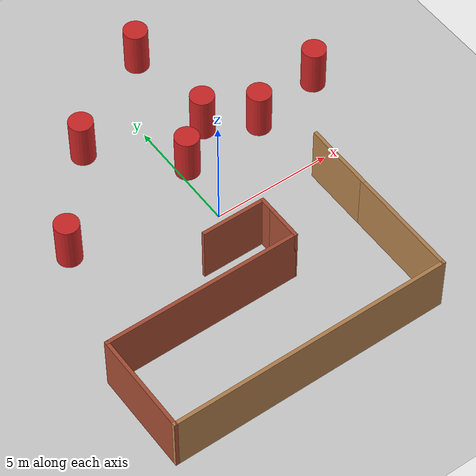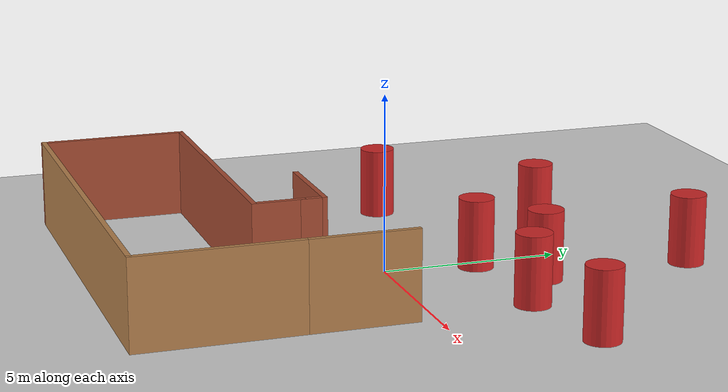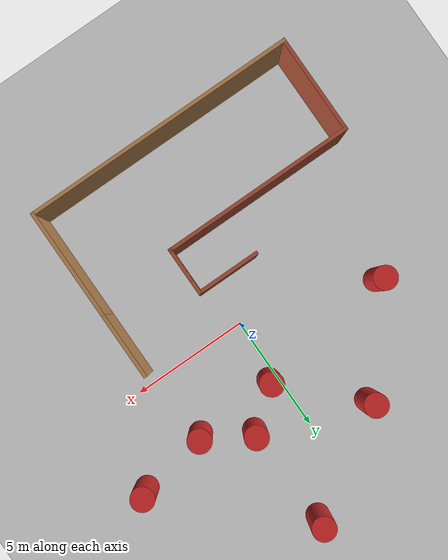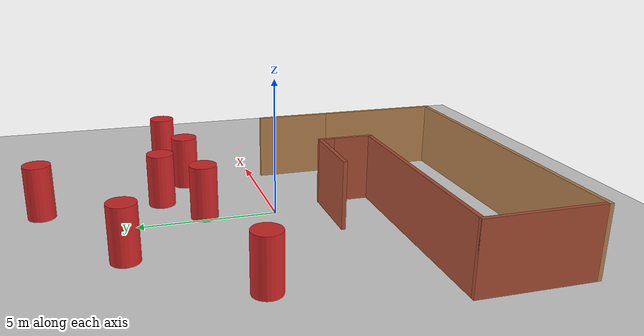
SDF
<sdf version="1.6">
 <world name="default">
  <light name="sun" type="directional">
   <pose>0 0 10 0 -0 0</pose>
   <diffuse>0.8 0.8 0.8 1</diffuse>
   <specular>0.2 0.2 0.2 1</specular>
   <attenuation>
    <range>1000</range>
    <constant>0.9</constant>
    <linear>0.01</linear>
    <quadratic>0.001</quadratic>
   </attenuation>
   <direction>-0.5 0.1 -0.9</direction>
  </light>
  <model name="ground_plane">
   <static>1</static>
   <link name="link">
    <collision name="collision">
     <geometry><plane><normal>0 0 1</normal><size>100 100</size></plane></geometry>
     <surface>
      <contact><collide_bitmask>65535</collide_bitmask></contact>
      <friction><ode><mu>100</mu><mu2>50</mu2></ode></friction>
     </surface>
    </collision>
    <visual name="visual">
     <cast_shadows>0</cast_shadows>
     <geometry><plane><normal>0 0 1</normal><size>100 100</size></plane></geometry>
     <material>
      <script><uri>file://media/materials/scripts/gazebo.material</uri><name>Gazebo/Grey</name></script>
     </material>
    </visual>
   </link>
  </model>
  <gravity>0 0 -9.8</gravity>
  <magnetic_field>6e-06 2.3e-05 -4.2e-05</magnetic_field>
  <atmosphere type="adiabatic"/>
  <physics name="default_physics" default="0" type="ode">
   <max_step_size>0.001</max_step_size>
   <real_time_factor>1</real_time_factor>
   <real_time_update_rate>1000</real_time_update_rate>
  </physics>
  <scene><ambient>0.4 0.4 0.4 1</ambient><background>0.7 0.7 0.7 1</background><shadows>1</shadows></scene>
  <audio><device>default</device></audio>
  <spherical_coordinates>
   <surface_model>EARTH_WGS84</surface_model>
   <latitude_deg>0</latitude_deg>
   <longitude_deg>0</longitude_deg>
   <elevation>0</elevation>
   <heading_deg>0</heading_deg>
  </spherical_coordinates>
  <model name="Untitled">
   <link name="link_0">
    <inertial>
     <mass>1</mass>
     <inertia><ixx>0.145833</ixx><ixy>0</ixy><ixz>0</ixz><iyy>0.145833</iyy><iyz>0</iyz><izz>0.125</izz></inertia>
    </inertial>
    <pose>2.88173 -1.23991 0 0 -0 0</pose>
    <visual name="visual">
     <geometry><cylinder><radius>0.5</radius><length>2</length></cylinder></geometry>
     <material>
      <lighting>1</lighting>
      <script><uri>file://media/materials/scripts/gazebo.material</uri><name>Gazebo/Red</name></script>
      <shader type="vertex"><normal_map>__default__</normal_map></shader>
      <ambient>1 0 0 1</ambient>
      <diffuse>1 0 0 1</diffuse>
      <specular>0.1 0.1 0.1 1</specular>
      <emissive>0 0 0 1</emissive>
     </material>
    </visual>
    <collision name="collision">
     <geometry><cylinder><radius>0.5</radius><length>2</length></cylinder></geometry>
     <surface>
      <friction>
       <ode><mu>1</mu><mu2>1</mu2><fdir1>0 0 0</fdir1><slip1>0</slip1><slip2>0</slip2></ode>
       <torsional>
        <coefficient>1</coefficient>
        <patch_radius>0</patch_radius>
        <surface_radius>0</surface_radius>
        <use_patch_radius>1</use_patch_radius>
        <ode><slip>0</slip></ode>
       </torsional>
      </friction>
      <bounce><restitution_coefficient>0</restitution_coefficient><threshold>1e+06</threshold></bounce>
      <contact>
       <collide_without_contact>0</collide_without_contact>
       <collide_without_contact_bitmask>1</collide_without_contact_bitmask>
       <collide_bitmask>1</collide_bitmask>
       <ode>
        <soft_cfm>0</soft_cfm>
        <soft_erp>0.2</soft_erp>
        <kp>1e+13</kp>
        <kd>1</kd>
        <max_vel>0.01</max_vel>
        <min_depth>0</min_depth>
       </ode>
       <bullet>
        <split_impulse>1</split_impulse>
        <split_impulse_penetration_threshold>-0.01</split_impulse_penetration_threshold>
        <soft_cfm>0</soft_cfm>
        <soft_erp>0.2</soft_erp>
        <kp>1e+13</kp>
        <kd>1</kd>
       </bullet>
      </contact>
     </surface>
    </collision>
   </link>
   <link name="link_0_clone">
    <inertial>
     <mass>1</mass>
     <inertia><ixx>0.145833</ixx><ixy>0</ixy><ixz>0</ixz><iyy>0.145833</iyy><iyz>0</iyz><izz>0.125</izz></inertia>
    </inertial>
    <pose>1.00724 -0.096687 0 0 -0 0</pose>
    <visual name="visual">
     <geometry><cylinder><radius>0.5</radius><length>2</length></cylinder></geometry>
     <material>
      <lighting>1</lighting>
      <script><uri>file://media/materials/scripts/gazebo.material</uri><name>Gazebo/Red</name></script>
      <shader type="vertex"><normal_map>__default__</normal_map></shader>
      <ambient>1 0 0 1</ambient>
      <diffuse>1 0 0 1</diffuse>
      <specular>0.1 0.1 0.1 1</specular>
      <emissive>0 0 0 1</emissive>
     </material>
    </visual>
    <collision name="collision">
     <geometry><cylinder><radius>0.5</radius><length>2</length></cylinder></geometry>
     <surface>
      <friction>
       <ode><mu>1</mu><mu2>1</mu2><fdir1>0 0 0</fdir1><slip1>0</slip1><slip2>0</slip2></ode>
       <torsional>
        <coefficient>1</coefficient>
        <patch_radius>0</patch_radius>
        <surface_radius>0</surface_radius>
        <use_patch_radius>1</use_patch_radius>
        <ode><slip>0</slip></ode>
       </torsional>
      </friction>
      <bounce><restitution_coefficient>0</restitution_coefficient><threshold>1e+06</threshold></bounce>
      <contact>
       <collide_without_contact>0</collide_without_contact>
       <collide_without_contact_bitmask>1</collide_without_contact_bitmask>
       <collide_bitmask>1</collide_bitmask>
       <ode>
        <soft_cfm>0</soft_cfm>
        <soft_erp>0.2</soft_erp>
        <kp>1e+13</kp>
        <kd>1</kd>
        <max_vel>0.01</max_vel>
        <min_depth>0</min_depth>
       </ode>
       <bullet>
        <split_impulse>1</split_impulse>
        <split_impulse_penetration_threshold>-0.01</split_impulse_penetration_threshold>
        <soft_cfm>0</soft_cfm>
        <soft_erp>0.2</soft_erp>
        <kp>1e+13</kp>
        <kd>1</kd>
       </bullet>
      </contact>
     </surface>
    </collision>
   </link>
   <link name="link_0_clone_0">
    <inertial>
     <mass>1</mass>
     <inertia><ixx>0.145833</ixx><ixy>0</ixy><ixz>0</ixz><iyy>0.145833</iyy><iyz>0</iyz><izz>0.125</izz></inertia>
    </inertial>
    <pose>-0.646073 -1.44747 0 0 -0 0</pose>
    <visual name="visual">
     <geometry><cylinder><radius>0.5</radius><length>2</length></cylinder></geometry>
     <material>
      <lighting>1</lighting>
      <script><uri>file://media/materials/scripts/gazebo.material</uri><name>Gazebo/Red</name></script>
      <shader type="vertex"><normal_map>__default__</normal_map></shader>
      <ambient>1 0 0 1</ambient>
      <diffuse>1 0 0 1</diffuse>
      <specular>0.1 0.1 0.1 1</specular>
      <emissive>0 0 0 1</emissive>
     </material>
    </visual>
    <collision name="collision">
     <geometry><cylinder><radius>0.5</radius><length>2</length></cylinder></geometry>
     <surface>
      <friction>
       <ode><mu>1</mu><mu2>1</mu2><fdir1>0 0 0</fdir1><slip1>0</slip1><slip2>0</slip2></ode>
       <torsional>
        <coefficient>1</coefficient>
        <patch_radius>0</patch_radius>
        <surface_radius>0</surface_radius>
        <use_patch_radius>1</use_patch_radius>
        <ode><slip>0</slip></ode>
       </torsional>
      </friction>
      <bounce><restitution_coefficient>0</restitution_coefficient><threshold>1e+06</threshold></bounce>
      <contact>
       <collide_without_contact>0</collide_without_contact>
       <collide_without_contact_bitmask>1</collide_without_contact_bitmask>
       <collide_bitmask>1</collide_bitmask>
       <ode>
        <soft_cfm>0</soft_cfm>
        <soft_erp>0.2</soft_erp>
        <kp>1e+13</kp>
        <kd>1</kd>
        <max_vel>0.01</max_vel>
        <min_depth>0</min_depth>
       </ode>
       <bullet>
        <split_impulse>1</split_impulse>
        <split_impulse_penetration_threshold>-0.01</split_impulse_penetration_threshold>
        <soft_cfm>0</soft_cfm>
        <soft_erp>0.2</soft_erp>
        <kp>1e+13</kp>
        <kd>1</kd>
       </bullet>
      </contact>
     </surface>
    </collision>
   </link>
   <link name="link_0_clone_1">
    <inertial>
     <mass>1</mass>
     <inertia><ixx>0.145833</ixx><ixy>0</ixy><ixz>0</ixz><iyy>0.145833</iyy><iyz>0</iyz><izz>0.125</izz></inertia>
    </inertial>
    <pose>5.94919 -0.6644 0 0 -0 0</pose>
    <visual name="visual">
     <geometry><cylinder><radius>0.5</radius><length>2</length></cylinder></geometry>
     <material>
      <lighting>1</lighting>
      <script><uri>file://media/materials/scripts/gazebo.material</uri><name>Gazebo/Red</name></script>
      <shader type="vertex"><normal_map>__default__</normal_map></shader>
      <ambient>1 0 0 1</ambient>
      <diffuse>1 0 0 1</diffuse>
      <specular>0.1 0.1 0.1 1</specular>
      <emissive>0 0 0 1</emissive>
     </material>
    </visual>
    <collision name="collision">
     <geometry><cylinder><radius>0.5</radius><length>2</length></cylinder></geometry>
     <surface>
      <friction>
       <ode><mu>1</mu><mu2>1</mu2><fdir1>0 0 0</fdir1><slip1>0</slip1><slip2>0</slip2></ode>
       <torsional>
        <coefficient>1</coefficient>
        <patch_radius>0</patch_radius>
        <surface_radius>0</surface_radius>
        <use_patch_radius>1</use_patch_radius>
        <ode><slip>0</slip></ode>
       </torsional>
      </friction>
      <bounce><restitution_coefficient>0</restitution_coefficient><threshold>1e+06</threshold></bounce>
      <contact>
       <collide_without_contact>0</collide_without_contact>
       <collide_without_contact_bitmask>1</collide_without_contact_bitmask>
       <collide_bitmask>1</collide_bitmask>
       <ode>
        <soft_cfm>0</soft_cfm>
        <soft_erp>0.2</soft_erp>
        <kp>1e+13</kp>
        <kd>1</kd>
        <max_vel>0.01</max_vel>
        <min_depth>0</min_depth>
       </ode>
       <bullet>
        <split_impulse>1</split_impulse>
        <split_impulse_penetration_threshold>-0.01</split_impulse_penetration_threshold>
        <soft_cfm>0</soft_cfm>
        <soft_erp>0.2</soft_erp>
        <kp>1e+13</kp>
        <kd>1</kd>
       </bullet>
      </contact>
     </surface>
    </collision>
   </link>
   <link name="link_0_clone_2">
    <inertial>
     <mass>1</mass>
     <inertia><ixx>0.145833</ixx><ixy>0</ixy><ixz>0</ixz><iyy>0.145833</iyy><iyz>0</iyz><izz>0.125</izz></inertia>
    </inertial>
    <pose>-3.47652 1.51216 0 0 -0 0</pose>
    <visual name="visual">
     <geometry><cylinder><radius>0.5</radius><length>2</length></cylinder></geometry>
     <material>
      <lighting>1</lighting>
      <script><uri>file://media/materials/scripts/gazebo.material</uri><name>Gazebo/Red</name></script>
      <shader type="vertex"><normal_map>__default__</normal_map></shader>
      <ambient>1 0 0 1</ambient>
      <diffuse>1 0 0 1</diffuse>
      <specular>0.1 0.1 0.1 1</specular>
      <emissive>0 0 0 1</emissive>
     </material>
    </visual>
    <collision name="collision">
     <geometry><cylinder><radius>0.5</radius><length>2</length></cylinder></geometry>
     <surface>
      <friction>
       <ode><mu>1</mu><mu2>1</mu2><fdir1>0 0 0</fdir1><slip1>0</slip1><slip2>0</slip2></ode>
       <torsional>
        <coefficient>1</coefficient>
        <patch_radius>0</patch_radius>
        <surface_radius>0</surface_radius>
        <use_patch_radius>1</use_patch_radius>
        <ode><slip>0</slip></ode>
       </torsional>
      </friction>
      <bounce><restitution_coefficient>0</restitution_coefficient><threshold>1e+06</threshold></bounce>
      <contact>
       <collide_without_contact>0</collide_without_contact>
       <collide_without_contact_bitmask>1</collide_without_contact_bitmask>
       <collide_bitmask>1</collide_bitmask>
       <ode>
        <soft_cfm>0</soft_cfm>
        <soft_erp>0.2</soft_erp>
        <kp>1e+13</kp>
        <kd>1</kd>
        <max_vel>0.01</max_vel>
        <min_depth>0</min_depth>
       </ode>
       <bullet>
        <split_impulse>1</split_impulse>
        <split_impulse_penetration_threshold>-0.01</split_impulse_penetration_threshold>
        <soft_cfm>0</soft_cfm>
        <soft_erp>0.2</soft_erp>
        <kp>1e+13</kp>
        <kd>1</kd>
       </bullet>
      </contact>
     </surface>
    </collision>
   </link>
   <link name="link_0_clone_3">
    <inertial>
     <mass>1</mass>
     <inertia><ixx>0.145833</ixx><ixy>0</ixy><ixz>0</ixz><iyy>0.145833</iyy><iyz>0</iyz><izz>0.125</izz></inertia>
    </inertial>
    <pose>-6.58369 -2.30723 0 0 -0 0</pose>
    <visual name="visual">
     <geometry><cylinder><radius>0.5</radius><length>2</length></cylinder></geometry>
     <material>
      <lighting>1</lighting>
      <script><uri>file://media/materials/scripts/gazebo.material</uri><name>Gazebo/Red</name></script>
      <shader type="vertex"><normal_map>__default__</normal_map></shader>
      <ambient>1 0 0 1</ambient>
      <diffuse>1 0 0 1</diffuse>
      <specular>0.1 0.1 0.1 1</specular>
      <emissive>0 0 0 1</emissive>
     </material>
    </visual>
    <collision name="collision">
     <geometry><cylinder><radius>0.5</radius><length>2</length></cylinder></geometry>
     <surface>
      <friction>
       <ode><mu>1</mu><mu2>1</mu2><fdir1>0 0 0</fdir1><slip1>0</slip1><slip2>0</slip2></ode>
       <torsional>
        <coefficient>1</coefficient>
        <patch_radius>0</patch_radius>
        <surface_radius>0</surface_radius>
        <use_patch_radius>1</use_patch_radius>
        <ode><slip>0</slip></ode>
       </torsional>
      </friction>
      <bounce><restitution_coefficient>0</restitution_coefficient><threshold>1e+06</threshold></bounce>
      <contact>
       <collide_without_contact>0</collide_without_contact>
       <collide_without_contact_bitmask>1</collide_without_contact_bitmask>
       <collide_bitmask>1</collide_bitmask>
       <ode>
        <soft_cfm>0</soft_cfm>
        <soft_erp>0.2</soft_erp>
        <kp>1e+13</kp>
        <kd>1</kd>
        <max_vel>0.01</max_vel>
        <min_depth>0</min_depth>
       </ode>
       <bullet>
        <split_impulse>1</split_impulse>
        <split_impulse_penetration_threshold>-0.01</split_impulse_penetration_threshold>
        <soft_cfm>0</soft_cfm>
        <soft_erp>0.2</soft_erp>
        <kp>1e+13</kp>
        <kd>1</kd>
       </bullet>
      </contact>
     </surface>
    </collision>
   </link>
   <link name="link_0_clone_4">
    <inertial>
     <mass>1</mass>
     <inertia><ixx>0.145833</ixx><ixy>0</ixy><ixz>0</ixz><iyy>0.145833</iyy><iyz>0</iyz><izz>0.125</izz></inertia>
    </inertial>
    <pose>0.868111 4.24355 0 0 -0 0</pose>
    <visual name="visual">
     <geometry><cylinder><radius>0.5</radius><length>2</length></cylinder></geometry>
     <material>
      <lighting>1</lighting>
      <script><uri>file://media/materials/scripts/gazebo.material</uri><name>Gazebo/Red</name></script>
      <shader type="vertex"><normal_map>__default__</normal_map></shader>
      <ambient>1 0 0 1</ambient>
      <diffuse>1 0 0 1</diffuse>
      <specular>0.1 0.1 0.1 1</specular>
      <emissive>0 0 0 1</emissive>
     </material>
    </visual>
    <collision name="collision">
     <geometry><cylinder><radius>0.5</radius><length>2</length></cylinder></geometry>
     <surface>
      <friction>
       <ode><mu>1</mu><mu2>1</mu2><fdir1>0 0 0</fdir1><slip1>0</slip1><slip2>0</slip2></ode>
       <torsional>
        <coefficient>1</coefficient>
        <patch_radius>0</patch_radius>
        <surface_radius>0</surface_radius>
        <use_patch_radius>1</use_patch_radius>
        <ode><slip>0</slip></ode>
       </torsional>
      </friction>
      <bounce><restitution_coefficient>0</restitution_coefficient><threshold>1e+06</threshold></bounce>
      <contact>
       <collide_without_contact>0</collide_without_contact>
       <collide_without_contact_bitmask>1</collide_without_contact_bitmask>
       <collide_bitmask>1</collide_bitmask>
       <ode>
        <soft_cfm>0</soft_cfm>
        <soft_erp>0.2</soft_erp>
        <kp>1e+13</kp>
        <kd>1</kd>
        <max_vel>0.01</max_vel>
        <min_depth>0</min_depth>
       </ode>
       <bullet>
        <split_impulse>1</split_impulse>
        <split_impulse_penetration_threshold>-0.01</split_impulse_penetration_threshold>
        <soft_cfm>0</soft_cfm>
        <soft_erp>0.2</soft_erp>
        <kp>1e+13</kp>
        <kd>1</kd>
       </bullet>
      </contact>
     </surface>
    </collision>
   </link>
   <static>0</static>
   <pose>1 4 0.999996 -0 -0 -1e-06</pose>
  </model>
  <model name="model ">
   <pose>-1.6836 -4.24247 0 0 -0 0</pose>
   <link name="Wall_13">
    <collision name="Wall_13_Collision">
     <geometry><box><size>11.75 0.15 2.5</size></box></geometry>
     <pose>0 0 1.25 0 -0 0</pose>
    </collision>
    <visual name="Wall_13_Visual">
     <pose>0 0 1.25 0 -0 0</pose>
     <geometry><box><size>11.75 0.15 2.5</size></box></geometry>
     <material>
      <script><uri>file://media/materials/scripts/gazebo.material</uri><name>Gazebo/Wood</name></script>
      <ambient>1 1 1 1</ambient>
     </material>
     <meta><layer>0</layer></meta>
    </visual>
    <pose>-0 -3.725 0 0 -0 3.14159</pose>
   </link>
   <link name="Wall_15">
    <collision name="Wall_15_Collision">
     <geometry><box><size>4.25 0.15 2.5</size></box></geometry>
     <pose>0 0 1.25 0 -0 0</pose>
    </collision>
    <visual name="Wall_15_Visual">
     <pose>0 0 1.25 0 -0 0</pose>
     <geometry><box><size>4.25 0.15 2.5</size></box></geometry>
     <material>
      <script><uri>file://media/materials/scripts/gazebo.material</uri><name>Gazebo/Bricks</name></script>
      <ambient>1 1 1 1</ambient>
     </material>
     <meta><layer>0</layer></meta>
    </visual>
    <pose>-5.8 -1.675 0 0 -0 1.5708</pose>
   </link>
   <link name="Wall_16">
    <collision name="Wall_16_Collision">
     <geometry><box><size>8.25 0.15 2.5</size></box></geometry>
     <pose>0 0 1.25 0 -0 0</pose>
    </collision>
    <visual name="Wall_16_Visual">
     <pose>0 0 1.25 0 -0 0</pose>
     <geometry><box><size>8.25 0.15 2.5</size></box></geometry>
     <material>
      <script><uri>file://media/materials/scripts/gazebo.material</uri><name>Gazebo/Bricks</name></script>
      <ambient>1 1 1 1</ambient>
     </material>
     <meta><layer>0</layer></meta>
    </visual>
    <pose>-1.75 0.375 0 0 -0 0</pose>
   </link>
   <link name="Wall_17">
    <collision name="Wall_17_Collision">
     <geometry><box><size>1.5 0.15 2.5</size></box></geometry>
     <pose>0 0 1.25 0 -0 0</pose>
    </collision>
    <visual name="Wall_17_Visual">
     <pose>0 0 1.25 0 -0 0</pose>
     <geometry><box><size>1.5 0.15 2.5</size></box></geometry>
     <material>
      <script><uri>file://media/materials/scripts/gazebo.material</uri><name>Gazebo/Bricks</name></script>
      <ambient>1 1 1 1</ambient>
     </material>
     <meta><layer>0</layer></meta>
    </visual>
    <pose>2.3 1.05 0 0 -0 1.5708</pose>
   </link>
   <link name="Wall_18">
    <collision name="Wall_18_Collision">
     <geometry><box><size>0.75 0.15 2.5</size></box></geometry>
     <pose>0 0 1.25 0 -0 0</pose>
    </collision>
    <visual name="Wall_18_Visual">
     <pose>0 0 1.25 0 -0 0</pose>
     <geometry><box><size>0.75 0.15 2.5</size></box></geometry>
     <material>
      <script><uri>file://media/materials/scripts/gazebo.material</uri><name>Gazebo/Bricks</name></script>
      <ambient>1 1 1 1</ambient>
     </material>
     <meta><layer>0</layer></meta>
    </visual>
    <pose>2.3 2.025 0 0 -0 1.5708</pose>
   </link>
   <link name="Wall_19">
    <collision name="Wall_19_Collision">
     <geometry><box><size>2.75 0.15 2.5</size></box></geometry>
     <pose>0 0 1.25 0 -0 0</pose>
    </collision>
    <visual name="Wall_19_Visual">
     <pose>0 0 1.25 0 -0 0</pose>
     <geometry><box><size>2.75 0.15 2.5</size></box></geometry>
     <material>
      <script><uri>file://media/materials/scripts/gazebo.material</uri><name>Gazebo/Bricks</name></script>
      <ambient>1 1 1 1</ambient>
     </material>
     <meta><layer>0</layer></meta>
    </visual>
    <pose>1 2.325 0 0 -0 3.14159</pose>
   </link>
   <link name="Wall_21">
    <collision name="Wall_21_Collision">
     <geometry><box><size>4.75 0.15 2.5</size></box></geometry>
     <pose>0 0 1.25 0 -0 0</pose>
    </collision>
    <visual name="Wall_21_Visual">
     <pose>0 0 1.25 0 -0 0</pose>
     <geometry><box><size>4.75 0.15 2.5</size></box></geometry>
     <material>
      <script><uri>file://media/materials/scripts/gazebo.material</uri><name>Gazebo/Wood</name></script>
      <ambient>1 1 1 1</ambient>
     </material>
     <meta><layer>0</layer></meta>
    </visual>
    <pose>5.8 -1.425 0 0 -0 1.5708</pose>
   </link>
   <link name="Wall_23">
    <collision name="Wall_23_Collision">
     <geometry><box><size>3 0.15 2.5</size></box></geometry>
     <pose>0 0 1.25 0 -0 0</pose>
    </collision>
    <visual name="Wall_23_Visual">
     <pose>0 0 1.25 0 -0 0</pose>
     <geometry><box><size>3 0.15 2.5</size></box></geometry>
     <material>
      <script><uri>file://media/materials/scripts/gazebo.material</uri><name>Gazebo/Wood</name></script>
      <ambient>1 1 1 1</ambient>
     </material>
     <meta><layer>0</layer></meta>
    </visual>
    <pose>5.8 2.3 0 0 -0 1.5708</pose>
   </link>
   <static>1</static>
  </model>
 </world>
</sdf>
